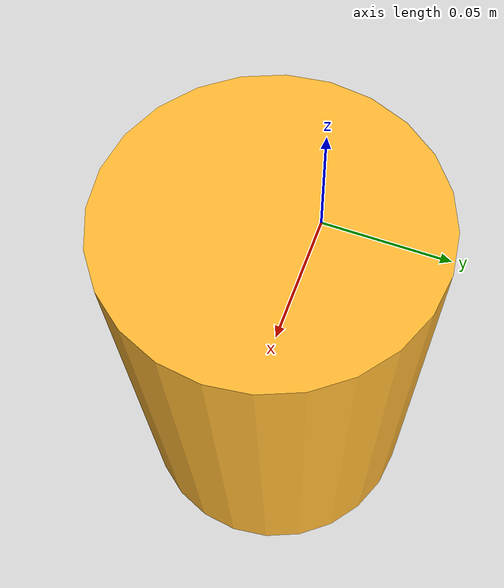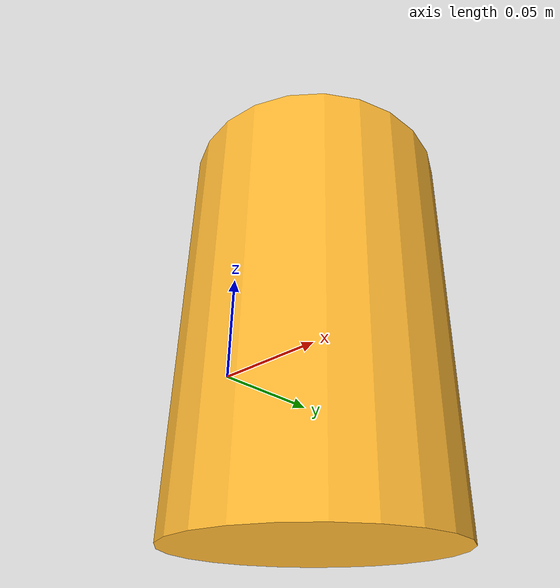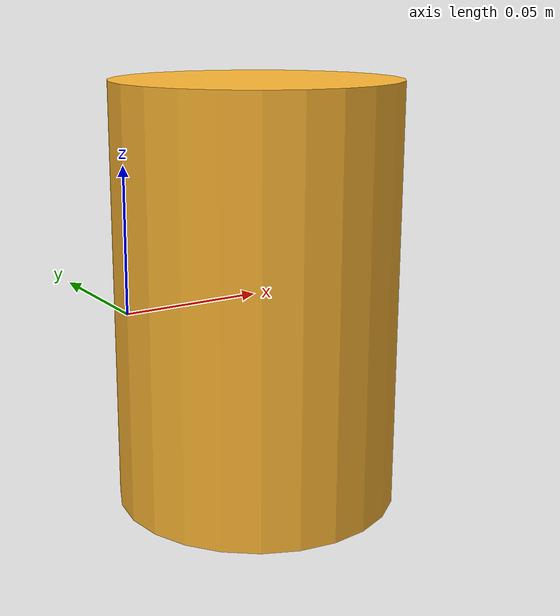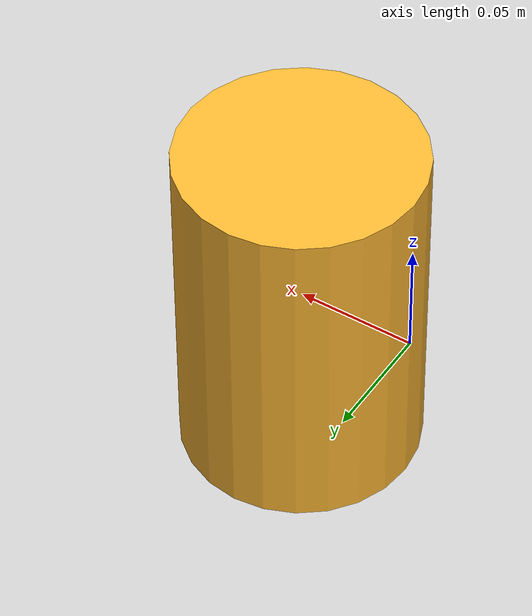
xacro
<?xml version="1.0"?>
<robot xmlns:xacro="http://ros.org/wiki/xacro" name="psen_scan">
  <!-- Example on how to use the psen_scan scanner within your robots urdf -->
  <xacro:arg name="prefix" default="laser_1"/>

  <xacro:include filename="$(find psen_scan_v2)/urdf/psen_scan.urdf.xacro" />

  <xacro:psen_scan prefix="$(arg prefix)" />
</robot>

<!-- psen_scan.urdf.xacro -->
<robot xmlns:xacro="http://ros.org/wiki/xacro">
  <xacro:macro name="psen_scan" params="prefix">
    <xacro:property name="mass" value="1.53" /> <!-- src datasheet p 96 -->
    <xacro:property name="radius" value="0.051" /> <!-- src datasheet p 96 -->
    <xacro:property name="height" value="0.152" /> <!-- src datasheet p 96 -->
    <xacro:property name="dist_scanning_plane_top" value="0.0377" /> <!-- src datasheet p 96 -->
    <xacro:property name="dist_scanning_axis_rear" value="0.0525" /> <!-- src datasheet p 96 -->

    <!-- Location of mounting point at the lower back of device -->
    <link name="${prefix}_mount_link"/>

    <joint name="${prefix}_mount_joint" type="fixed">
      <parent link="${prefix}_mount_link" />
      <child link="${prefix}" />
      <origin rpy="0 0 0" xyz="${radius} 0 0"/>
    </joint>

    <!-- Location of scanner body -->
    <link name="${prefix}">
      <visual>
        <geometry>
          <cylinder radius="${radius}" length="${height}" />
        </geometry>
        <material name="pilz_yellow" >
          <color rgba="1.0 0.722 0.196 1.0" />
        </material>
      </visual>
      <collision>
        <geometry>
          <cylinder radius="${radius}" length="${height}" />
        </geometry>
      </collision>
      <inertial>
        <mass value="${mass}" />
        <origin xyz="0 0 0" />
        <inertia ixx="${1 / 12 * mass * (3 * radius * radius + height * height)}" ixy="0.0" ixz="0.0"
          iyy="${1 / 12 * mass * (3 * radius * radius + height * height)}" iyz="0.0"
          izz="${.5 * mass * (radius * radius)}" />
      </inertial>
    </link>

    <joint name="${prefix}_scan_joint" type="fixed">
      <parent link="${prefix}" />
      <child link="${prefix}_scan" />
      <origin rpy="${pi} 0 0" xyz="0 ${radius - dist_scanning_axis_rear} ${height / 2 - dist_scanning_plane_top}"/>
    </joint>

    <!-- This is the location of the laser scan -->
    <link name="${prefix}_scan">
    </link>
  </xacro:macro>
</robot>
